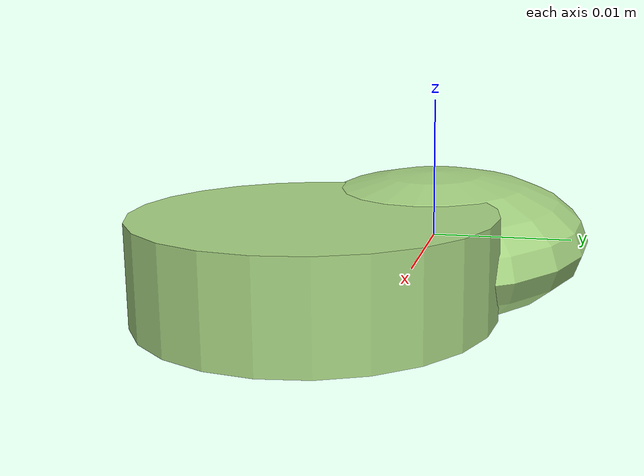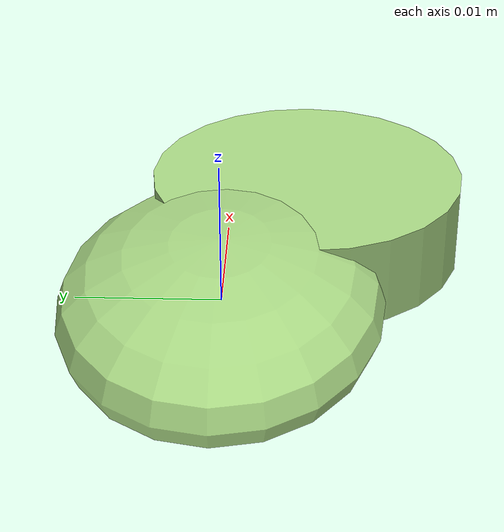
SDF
<?xml version="1.0" ?>
<!-- |    This document was autogenerated by xmacro from data/veggie_template/veggie_base.sdf.xacro  | -->
<!-- |    EDITING THIS FILE BY HAND IS NOT RECOMMENDED                                               | -->
<sdf version="1.8">
	<!-- Parameters -->
	<!-- Base -->
	<!-- Joint 0 -->
	<!-- Link 1 -->
	<!-- Joint 1 -->
	<!-- Link 2 -->
	<!-- Primitives -->
	<!-- All dimensions are half -->
	<!-- Object -->
	<model name="veggie">
		<!-- link0 -->
		<link name="link0">
			<inertial>
				<mass>0.0033350859769968244</mass>
				<inertia>
					<ixx>9.85017625798093e-08</ixx>
					<ixy>0</ixy>
					<ixz>0</ixz>
					<iyy>1.6506431143518956e-07</iyy>
					<iyz>0</iyz>
					<izz>2.3352945246235243e-07</izz>
				</inertia>
			</inertial>
			<visual name="link0_visual">
				<pose>0 0 0 0 0 0</pose>
				<geometry>
					<ellipsoid>
						<radii>0.014998357358400407 0.011187464850104412 0.004745063498296996</radii>
					</ellipsoid>
				</geometry>
				<material>
					<ambient>0.659 0.839 0.514 1</ambient>
					<diffuse>0.659 0.839 0.514 1</diffuse>
					<specular>0 0 0 0</specular>
					<emissive>0 0 0 1</emissive>
				</material>
			</visual>
			<collision name="link0_collision">
				<pose>0 0 0 0 0 0 </pose>
				<geometry>
					<ellipsoid>
						<radii>0.014998357358400407 0.011187464850104412 0.004745063498296996</radii>
					</ellipsoid>
				</geometry>
			</collision>
		</link>
		<!-- link1 -->
		<joint name="joint0" type="fixed">
			<pose relative_to="link0">0.01168206540820805 -0.005769958338936451 0.0006238417770542095 0.0 0.0 0.0</pose>
			<parent>link0</parent>
			<child>link1</child>
		</joint>
		<link name="link1">
			<pose relative_to="joint0">0 0 0 0 0 0</pose>
			<inertial>
				<mass>0.0025823968916423704</mass>
				<inertia>
					<ixx>9.223868635283759e-08</ixx>
					<ixy>0</ixy>
					<ixz>0</ixz>
					<iyy>9.223868635283759e-08</iyy>
					<iyz>0</iyz>
					<izz>1.6711691791072778e-07</izz>
				</inertia>
			</inertial>
			<visual name="link1_visual">
				<pose>0 0 0 0 0 0</pose>
				<geometry>
					<cylinder>
						<radius>0.011376632032403801</radius>
						<length>0.006351037531086202</length>
					</cylinder>
				</geometry>
				<material>
					<ambient>0.659 0.839 0.514 1</ambient>
					<diffuse>0.659 0.839 0.514 1</diffuse>
					<specular>0 0 0 0</specular>
					<emissive>0 0 0 1</emissive>
				</material>
			</visual>
			<collision name="link1_collision">
				<pose>0 0 0 0 0 0 </pose>
				<geometry>
					<cylinder>
						<radius>0.011376632032403801</radius>
						<length>0.006351037531086202</length>
					</cylinder>
				</geometry>
			</collision>
		</link>
		<!-- link2 -->
	</model>
</sdf>
